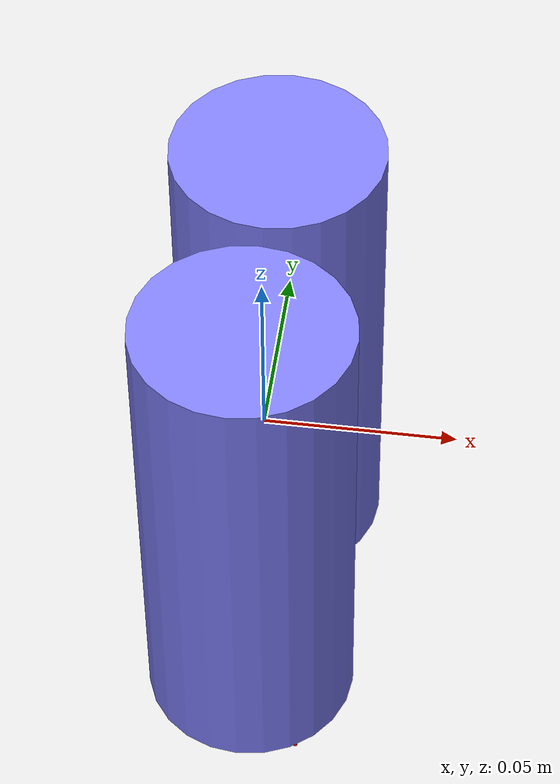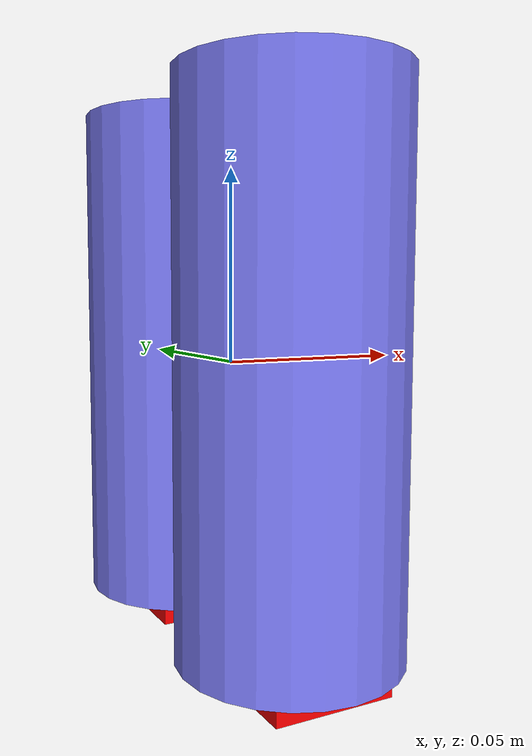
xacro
<?xml version="1.0"?>

<robot name="orca" xmlns:xacro="http://ros.org/wiki/xacro">

  <xacro:property name="RIG_X" value="0.10"/>
  <xacro:property name="RIG_Y" value="0.05"/>
  <xacro:property name="RIG_Z" value="0.02"/>
  <xacro:property name="STEREO_BASELINE" value="0.061"/>

  <!-- General constants -->
  <xacro:property name="PI" value="3.1415926535897931"/>

  <!-- Materials -->
  <material name="gray">
    <color rgba="0.5 0.5 0.5 1.0"/>
  </material>
  <material name="blue">
    <color rgba="0.5 0.5 1.0 1.0"/>
  </material>
  <material name="red">
    <color rgba="1.0 0.0 0.0 1.0"/>
  </material>

  <!-- Base link -->
  <link name="base_link">
    <!-- Left down-facing camera tube -->
    <visual>
      <origin xyz="0 ${STEREO_BASELINE/2} 0" rpy="0 0 0"/>
      <geometry>
        <cylinder length="0.135" radius="0.0275"/>
      </geometry>
      <material name="blue"/>
    </visual>
    <!-- Right down-facing camera tube -->
    <visual>
      <origin xyz="0 ${-STEREO_BASELINE/2} 0" rpy="0 0 0"/>
      <geometry>
        <cylinder length="0.135" radius="0.0275"/>
      </geometry>
      <material name="blue"/> <!-- Only 1 color allowed per link -->
    </visual>
  </link>

  <!-- Left camera link -->
  <link name="left_camera_link">
    <visual>
      <origin xyz="0 0 0" rpy="0 0 0"/>
      <geometry>
        <!-- Make the aspect ratio obvious -->
        <box size="0.01 0.04 0.03"/>
      </geometry>
      <material name="red"/>
    </visual>
  </link>

  <!-- Attach left_camera_link to base_link -->
  <joint name="left_camera_joint" type="fixed">
    <origin xyz="0 ${STEREO_BASELINE/2} -0.0675" rpy="0 ${PI/2} 0"/>
    <parent link="base_link"/>
    <child link="left_camera_link"/>
  </joint>

  <!-- Left camera frame -->
  <link name="left_camera_frame"/>

  <!-- Attach left_camera_frame to base_link -->
  <joint name="left_camera_frame_joint" type="fixed">
    <origin xyz="0 ${STEREO_BASELINE/2} -0.0675" rpy="${PI} 0 ${-PI/2}"/>
    <parent link="base_link"/>
    <child link="left_camera_frame"/>
  </joint>

  <!-- Right camera link -->
  <link name="right_camera_link">
    <visual>
      <origin xyz="0 0 0" rpy="0 0 0"/>
      <geometry>
        <!-- Make the aspect ratio obvious -->
        <box size="0.01 0.04 0.03"/>
      </geometry>
      <material name="red"/>
    </visual>
  </link>

  <!-- Attach right_camera_link to base_link -->
  <joint name="right_camera_joint" type="fixed">
    <origin xyz="0 ${-STEREO_BASELINE/2} -0.0675" rpy="0 ${PI/2} 0"/>
    <parent link="base_link"/>
    <child link="right_camera_link"/>
  </joint>

  <!-- Right camera frame -->
  <link name="right_camera_frame"/>

  <!-- Attach right_camera_frame to base_link -->
  <joint name="right_camera_frame_joint" type="fixed">
    <origin xyz="0 ${-STEREO_BASELINE/2} -0.0675" rpy="${PI} 0 ${-PI/2}"/>
    <parent link="base_link"/>
    <child link="right_camera_frame"/>
  </joint>

</robot>
